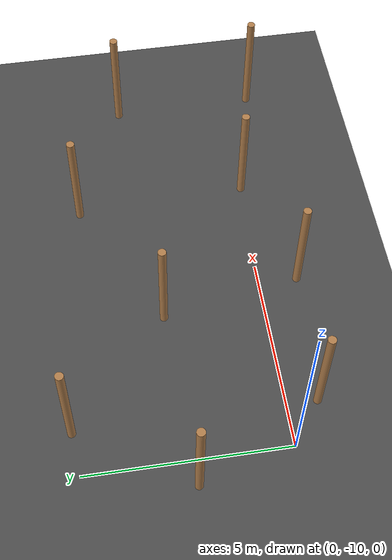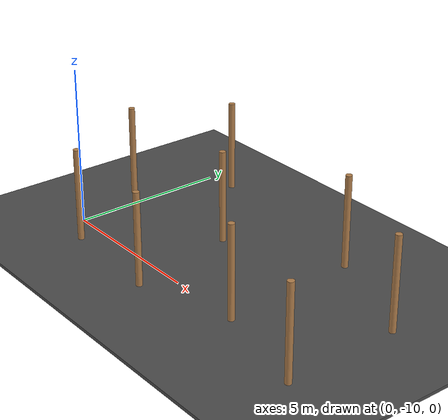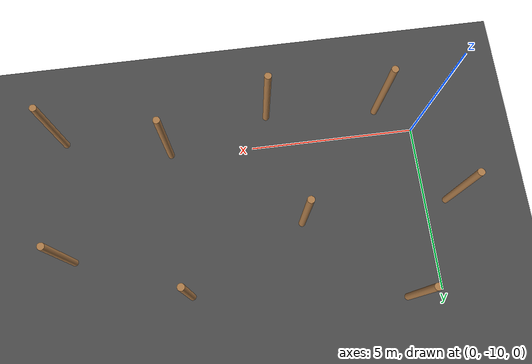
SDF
<sdf version="1.6">
 <world name="default">
  <include><uri>model://ground_plane</uri></include>
  <model name="asphalt_plane">
   <static>1</static>
   <link name="link">
    <collision name="collision"><geometry><box><size>42.4866 44.6464 0.1</size></box></geometry></collision>
    <visual name="visual">
     <cast_shadows>0</cast_shadows>
     <geometry><box><size>42.4866 44.6464 0.1</size></box></geometry>
     <material>
      <script>
       <uri>model://asphalt_plane/materials/scripts</uri>
       <uri>model://asphalt_plane/materials/textures</uri>
       <name>vrc/asphalt</name>
      </script>
     </material>
    </visual>
   </link>
  </model>
  <model name="wooden_cylinder1_clone_12">
   <pose>1.05943 -4.89483 8e-06 0 -0 0</pose>
   <link name="wooden_cylinder::link_0">
    <pose>0 0 1.5 0 -0 0</pose>
    <inertial>
     <mass>1</mass>
     <inertia><ixx>0.145833</ixx><ixy>0</ixy><ixz>0</ixz><iyy>0.145833</iyy><iyz>0</iyz><izz>0.125</izz></inertia>
    </inertial>
    <visual name="visual">
     <geometry><cylinder><radius>0.1</radius><length>3</length></cylinder></geometry>
     <material>
      <lighting>1</lighting>
      <script><uri>file://media/materials/scripts/gazebo.material</uri><name>Gazebo/Wood</name></script>
      <ambient>0.3 0.3 0.3 1</ambient>
      <diffuse>0.7 0.7 0.7 1</diffuse>
      <specular>0.01 0.01 0.01 1</specular>
      <emissive>0 0 0 1</emissive>
      <shader type="vertex"><normal_map>__default__</normal_map></shader>
     </material>
    </visual>
    <collision name="collision">
     <geometry><cylinder><radius>0.1</radius><length>3</length></cylinder></geometry>
     <surface>
      <friction>
       <ode><mu>1</mu><mu2>1</mu2><fdir1>0 0 0</fdir1><slip1>0</slip1><slip2>0</slip2></ode>
       <torsional>
        <coefficient>1</coefficient>
        <patch_radius>0</patch_radius>
        <surface_radius>0</surface_radius>
        <use_patch_radius>1</use_patch_radius>
        <ode><slip>0</slip></ode>
       </torsional>
      </friction>
      <bounce><restitution_coefficient>0</restitution_coefficient><threshold>1e+06</threshold></bounce>
      <contact>
       <collide_without_contact>0</collide_without_contact>
       <collide_without_contact_bitmask>1</collide_without_contact_bitmask>
       <collide_bitmask>1</collide_bitmask>
       <ode>
        <soft_cfm>0</soft_cfm>
        <soft_erp>0.2</soft_erp>
        <kp>1e+13</kp>
        <kd>1</kd>
        <max_vel>0.01</max_vel>
        <min_depth>0</min_depth>
       </ode>
       <bullet>
        <split_impulse>1</split_impulse>
        <split_impulse_penetration_threshold>-0.01</split_impulse_penetration_threshold>
        <soft_cfm>0</soft_cfm>
        <soft_erp>0.2</soft_erp>
        <kp>1e+13</kp>
        <kd>1</kd>
       </bullet>
      </contact>
     </surface>
    </collision>
   </link>
   <static>1</static>
  </model>
  <model name="wooden_cylinder1_clone_14">
   <pose>-0.619086 -7.63483 -3.8e-05 0 -0 0</pose>
   <link name="wooden_cylinder::link_0">
    <pose>0 0 1.5 0 -0 0</pose>
    <inertial>
     <mass>1</mass>
     <inertia><ixx>0.145833</ixx><ixy>0</ixy><ixz>0</ixz><iyy>0.145833</iyy><iyz>0</iyz><izz>0.125</izz></inertia>
    </inertial>
    <visual name="visual">
     <geometry><cylinder><radius>0.1</radius><length>3</length></cylinder></geometry>
     <material>
      <lighting>1</lighting>
      <script><uri>file://media/materials/scripts/gazebo.material</uri><name>Gazebo/Wood</name></script>
      <ambient>0.3 0.3 0.3 1</ambient>
      <diffuse>0.7 0.7 0.7 1</diffuse>
      <specular>0.01 0.01 0.01 1</specular>
      <emissive>0 0 0 1</emissive>
      <shader type="vertex"><normal_map>__default__</normal_map></shader>
     </material>
    </visual>
    <collision name="collision">
     <geometry><cylinder><radius>0.1</radius><length>3</length></cylinder></geometry>
     <surface>
      <friction>
       <ode><mu>1</mu><mu2>1</mu2><fdir1>0 0 0</fdir1><slip1>0</slip1><slip2>0</slip2></ode>
       <torsional>
        <coefficient>1</coefficient>
        <patch_radius>0</patch_radius>
        <surface_radius>0</surface_radius>
        <use_patch_radius>1</use_patch_radius>
        <ode><slip>0</slip></ode>
       </torsional>
      </friction>
      <bounce><restitution_coefficient>0</restitution_coefficient><threshold>1e+06</threshold></bounce>
      <contact>
       <collide_without_contact>0</collide_without_contact>
       <collide_without_contact_bitmask>1</collide_without_contact_bitmask>
       <collide_bitmask>1</collide_bitmask>
       <ode>
        <soft_cfm>0</soft_cfm>
        <soft_erp>0.2</soft_erp>
        <kp>1e+13</kp>
        <kd>1</kd>
        <max_vel>0.01</max_vel>
        <min_depth>0</min_depth>
       </ode>
       <bullet>
        <split_impulse>1</split_impulse>
        <split_impulse_penetration_threshold>-0.01</split_impulse_penetration_threshold>
        <soft_cfm>0</soft_cfm>
        <soft_erp>0.2</soft_erp>
        <kp>1e+13</kp>
        <kd>1</kd>
       </bullet>
      </contact>
     </surface>
    </collision>
   </link>
   <static>1</static>
  </model>
  <model name="wooden_cylinder1_clone_18">
   <pose>1.05229 -10.7459 3e-05 0 -0 0</pose>
   <link name="wooden_cylinder::link_0">
    <pose>0 0 1.5 0 -0 0</pose>
    <inertial>
     <mass>1</mass>
     <inertia><ixx>0.145833</ixx><ixy>0</ixy><ixz>0</ixz><iyy>0.145833</iyy><iyz>0</iyz><izz>0.125</izz></inertia>
    </inertial>
    <visual name="visual">
     <geometry><cylinder><radius>0.1</radius><length>3</length></cylinder></geometry>
     <material>
      <lighting>1</lighting>
      <script><uri>file://media/materials/scripts/gazebo.material</uri><name>Gazebo/Wood</name></script>
      <ambient>0.3 0.3 0.3 1</ambient>
      <diffuse>0.7 0.7 0.7 1</diffuse>
      <specular>0.01 0.01 0.01 1</specular>
      <emissive>0 0 0 1</emissive>
      <shader type="vertex"><normal_map>__default__</normal_map></shader>
     </material>
    </visual>
    <collision name="collision">
     <geometry><cylinder><radius>0.1</radius><length>3</length></cylinder></geometry>
     <surface>
      <friction>
       <ode><mu>1</mu><mu2>1</mu2><fdir1>0 0 0</fdir1><slip1>0</slip1><slip2>0</slip2></ode>
       <torsional>
        <coefficient>1</coefficient>
        <patch_radius>0</patch_radius>
        <surface_radius>0</surface_radius>
        <use_patch_radius>1</use_patch_radius>
        <ode><slip>0</slip></ode>
       </torsional>
      </friction>
      <bounce><restitution_coefficient>0</restitution_coefficient><threshold>1e+06</threshold></bounce>
      <contact>
       <collide_without_contact>0</collide_without_contact>
       <collide_without_contact_bitmask>1</collide_without_contact_bitmask>
       <collide_bitmask>1</collide_bitmask>
       <ode>
        <soft_cfm>0</soft_cfm>
        <soft_erp>0.2</soft_erp>
        <kp>1e+13</kp>
        <kd>1</kd>
        <max_vel>0.01</max_vel>
        <min_depth>0</min_depth>
       </ode>
       <bullet>
        <split_impulse>1</split_impulse>
        <split_impulse_penetration_threshold>-0.01</split_impulse_penetration_threshold>
        <soft_cfm>0</soft_cfm>
        <soft_erp>0.2</soft_erp>
        <kp>1e+13</kp>
        <kd>1</kd>
       </bullet>
      </contact>
     </surface>
    </collision>
   </link>
   <static>1</static>
  </model>
  <model name="wooden_cylinder1_clone_19">
   <pose>7.54901 -10.0816 0.000231 0 -0 0</pose>
   <link name="wooden_cylinder::link_0">
    <pose>0 0 1.5 0 -0 0</pose>
    <inertial>
     <mass>1</mass>
     <inertia><ixx>0.145833</ixx><ixy>0</ixy><ixz>0</ixz><iyy>0.145833</iyy><iyz>0</iyz><izz>0.125</izz></inertia>
    </inertial>
    <visual name="visual">
     <geometry><cylinder><radius>0.1</radius><length>3</length></cylinder></geometry>
     <material>
      <lighting>1</lighting>
      <script><uri>file://media/materials/scripts/gazebo.material</uri><name>Gazebo/Wood</name></script>
      <ambient>0.3 0.3 0.3 1</ambient>
      <diffuse>0.7 0.7 0.7 1</diffuse>
      <specular>0.01 0.01 0.01 1</specular>
      <emissive>0 0 0 1</emissive>
      <shader type="vertex"><normal_map>__default__</normal_map></shader>
     </material>
    </visual>
    <collision name="collision">
     <geometry><cylinder><radius>0.1</radius><length>3</length></cylinder></geometry>
     <surface>
      <friction>
       <ode><mu>1</mu><mu2>1</mu2><fdir1>0 0 0</fdir1><slip1>0</slip1><slip2>0</slip2></ode>
       <torsional>
        <coefficient>1</coefficient>
        <patch_radius>0</patch_radius>
        <surface_radius>0</surface_radius>
        <use_patch_radius>1</use_patch_radius>
        <ode><slip>0</slip></ode>
       </torsional>
      </friction>
      <bounce><restitution_coefficient>0</restitution_coefficient><threshold>1e+06</threshold></bounce>
      <contact>
       <collide_without_contact>0</collide_without_contact>
       <collide_without_contact_bitmask>1</collide_without_contact_bitmask>
       <collide_bitmask>1</collide_bitmask>
       <ode>
        <soft_cfm>0</soft_cfm>
        <soft_erp>0.2</soft_erp>
        <kp>1e+13</kp>
        <kd>1</kd>
        <max_vel>0.01</max_vel>
        <min_depth>0</min_depth>
       </ode>
       <bullet>
        <split_impulse>1</split_impulse>
        <split_impulse_penetration_threshold>-0.01</split_impulse_penetration_threshold>
        <soft_cfm>0</soft_cfm>
        <soft_erp>0.2</soft_erp>
        <kp>1e+13</kp>
        <kd>1</kd>
       </bullet>
      </contact>
     </surface>
    </collision>
   </link>
   <static>1</static>
  </model>
  <model name="wooden_cylinder1_clone_20">
   <pose>3.82649 -7.44946 -9.6e-05 0 -0 0</pose>
   <link name="wooden_cylinder::link_0">
    <pose>0 0 1.5 0 -0 0</pose>
    <inertial>
     <mass>1</mass>
     <inertia><ixx>0.145833</ixx><ixy>0</ixy><ixz>0</ixz><iyy>0.145833</iyy><iyz>0</iyz><izz>0.125</izz></inertia>
    </inertial>
    <visual name="visual">
     <geometry><cylinder><radius>0.1</radius><length>3</length></cylinder></geometry>
     <material>
      <lighting>1</lighting>
      <script><uri>file://media/materials/scripts/gazebo.material</uri><name>Gazebo/Wood</name></script>
      <ambient>0.3 0.3 0.3 1</ambient>
      <diffuse>0.7 0.7 0.7 1</diffuse>
      <specular>0.01 0.01 0.01 1</specular>
      <emissive>0 0 0 1</emissive>
      <shader type="vertex"><normal_map>__default__</normal_map></shader>
     </material>
    </visual>
    <collision name="collision">
     <geometry><cylinder><radius>0.1</radius><length>3</length></cylinder></geometry>
     <surface>
      <friction>
       <ode><mu>1</mu><mu2>1</mu2><fdir1>0 0 0</fdir1><slip1>0</slip1><slip2>0</slip2></ode>
       <torsional>
        <coefficient>1</coefficient>
        <patch_radius>0</patch_radius>
        <surface_radius>0</surface_radius>
        <use_patch_radius>1</use_patch_radius>
        <ode><slip>0</slip></ode>
       </torsional>
      </friction>
      <bounce><restitution_coefficient>0</restitution_coefficient><threshold>1e+06</threshold></bounce>
      <contact>
       <collide_without_contact>0</collide_without_contact>
       <collide_without_contact_bitmask>1</collide_without_contact_bitmask>
       <collide_bitmask>1</collide_bitmask>
       <ode>
        <soft_cfm>0</soft_cfm>
        <soft_erp>0.2</soft_erp>
        <kp>1e+13</kp>
        <kd>1</kd>
        <max_vel>0.01</max_vel>
        <min_depth>0</min_depth>
       </ode>
       <bullet>
        <split_impulse>1</split_impulse>
        <split_impulse_penetration_threshold>-0.01</split_impulse_penetration_threshold>
        <soft_cfm>0</soft_cfm>
        <soft_erp>0.2</soft_erp>
        <kp>1e+13</kp>
        <kd>1</kd>
       </bullet>
      </contact>
     </surface>
    </collision>
   </link>
   <static>1</static>
  </model>
  <model name="wooden_cylinder1_clone_21">
   <pose>4.4732 -10.9726 0.000101 0 -0 0</pose>
   <link name="wooden_cylinder::link_0">
    <pose>0 0 1.5 0 -0 0</pose>
    <inertial>
     <mass>1</mass>
     <inertia><ixx>0.145833</ixx><ixy>0</ixy><ixz>0</ixz><iyy>0.145833</iyy><iyz>0</iyz><izz>0.125</izz></inertia>
    </inertial>
    <visual name="visual">
     <geometry><cylinder><radius>0.1</radius><length>3</length></cylinder></geometry>
     <material>
      <lighting>1</lighting>
      <script><uri>file://media/materials/scripts/gazebo.material</uri><name>Gazebo/Wood</name></script>
      <ambient>0.3 0.3 0.3 1</ambient>
      <diffuse>0.7 0.7 0.7 1</diffuse>
      <specular>0.01 0.01 0.01 1</specular>
      <emissive>0 0 0 1</emissive>
      <shader type="vertex"><normal_map>__default__</normal_map></shader>
     </material>
    </visual>
    <collision name="collision">
     <geometry><cylinder><radius>0.1</radius><length>3</length></cylinder></geometry>
     <surface>
      <friction>
       <ode><mu>1</mu><mu2>1</mu2><fdir1>0 0 0</fdir1><slip1>0</slip1><slip2>0</slip2></ode>
       <torsional>
        <coefficient>1</coefficient>
        <patch_radius>0</patch_radius>
        <surface_radius>0</surface_radius>
        <use_patch_radius>1</use_patch_radius>
        <ode><slip>0</slip></ode>
       </torsional>
      </friction>
      <bounce><restitution_coefficient>0</restitution_coefficient><threshold>1e+06</threshold></bounce>
      <contact>
       <collide_without_contact>0</collide_without_contact>
       <collide_without_contact_bitmask>1</collide_without_contact_bitmask>
       <collide_bitmask>1</collide_bitmask>
       <ode>
        <soft_cfm>0</soft_cfm>
        <soft_erp>0.2</soft_erp>
        <kp>1e+13</kp>
        <kd>1</kd>
        <max_vel>0.01</max_vel>
        <min_depth>0</min_depth>
       </ode>
       <bullet>
        <split_impulse>1</split_impulse>
        <split_impulse_penetration_threshold>-0.01</split_impulse_penetration_threshold>
        <soft_cfm>0</soft_cfm>
        <soft_erp>0.2</soft_erp>
        <kp>1e+13</kp>
        <kd>1</kd>
       </bullet>
      </contact>
     </surface>
    </collision>
   </link>
   <static>1</static>
  </model>
  <model name="wooden_cylinder1_clone_25">
   <pose>7.31258 -5.66031 -0.000174 0 -0 0</pose>
   <link name="wooden_cylinder::link_0">
    <pose>0 0 1.5 0 -0 0</pose>
    <inertial>
     <mass>1</mass>
     <inertia><ixx>0.145833</ixx><ixy>0</ixy><ixz>0</ixz><iyy>0.145833</iyy><iyz>0</iyz><izz>0.125</izz></inertia>
    </inertial>
    <visual name="visual">
     <geometry><cylinder><radius>0.1</radius><length>3</length></cylinder></geometry>
     <material>
      <lighting>1</lighting>
      <script><uri>file://media/materials/scripts/gazebo.material</uri><name>Gazebo/Wood</name></script>
      <ambient>0.3 0.3 0.3 1</ambient>
      <diffuse>0.7 0.7 0.7 1</diffuse>
      <specular>0.01 0.01 0.01 1</specular>
      <emissive>0 0 0 1</emissive>
      <shader type="vertex"><normal_map>__default__</normal_map></shader>
     </material>
    </visual>
    <collision name="collision">
     <geometry><cylinder><radius>0.1</radius><length>3</length></cylinder></geometry>
     <surface>
      <friction>
       <ode><mu>1</mu><mu2>1</mu2><fdir1>0 0 0</fdir1><slip1>0</slip1><slip2>0</slip2></ode>
       <torsional>
        <coefficient>1</coefficient>
        <patch_radius>0</patch_radius>
        <surface_radius>0</surface_radius>
        <use_patch_radius>1</use_patch_radius>
        <ode><slip>0</slip></ode>
       </torsional>
      </friction>
      <bounce><restitution_coefficient>0</restitution_coefficient><threshold>1e+06</threshold></bounce>
      <contact>
       <collide_without_contact>0</collide_without_contact>
       <collide_without_contact_bitmask>1</collide_without_contact_bitmask>
       <collide_bitmask>1</collide_bitmask>
       <ode>
        <soft_cfm>0</soft_cfm>
        <soft_erp>0.2</soft_erp>
        <kp>1e+13</kp>
        <kd>1</kd>
        <max_vel>0.01</max_vel>
        <min_depth>0</min_depth>
       </ode>
       <bullet>
        <split_impulse>1</split_impulse>
        <split_impulse_penetration_threshold>-0.01</split_impulse_penetration_threshold>
        <soft_cfm>0</soft_cfm>
        <soft_erp>0.2</soft_erp>
        <kp>1e+13</kp>
        <kd>1</kd>
       </bullet>
      </contact>
     </surface>
    </collision>
   </link>
   <static>1</static>
  </model>
  <model name="wooden_cylinder1_clone_28">
   <pose>10.6822 -7.09279 -0.000131 0 -0 0</pose>
   <link name="wooden_cylinder::link_0">
    <pose>0 0 1.5 0 -0 0</pose>
    <inertial>
     <mass>1</mass>
     <inertia><ixx>0.145833</ixx><ixy>0</ixy><ixz>0</ixz><iyy>0.145833</iyy><iyz>0</iyz><izz>0.125</izz></inertia>
    </inertial>
    <visual name="visual">
     <geometry><cylinder><radius>0.1</radius><length>3</length></cylinder></geometry>
     <material>
      <lighting>1</lighting>
      <script><uri>file://media/materials/scripts/gazebo.material</uri><name>Gazebo/Wood</name></script>
      <ambient>0.3 0.3 0.3 1</ambient>
      <diffuse>0.7 0.7 0.7 1</diffuse>
      <specular>0.01 0.01 0.01 1</specular>
      <emissive>0 0 0 1</emissive>
      <shader type="vertex"><normal_map>__default__</normal_map></shader>
     </material>
    </visual>
    <collision name="collision">
     <geometry><cylinder><radius>0.1</radius><length>3</length></cylinder></geometry>
     <surface>
      <friction>
       <ode><mu>1</mu><mu2>1</mu2><fdir1>0 0 0</fdir1><slip1>0</slip1><slip2>0</slip2></ode>
       <torsional>
        <coefficient>1</coefficient>
        <patch_radius>0</patch_radius>
        <surface_radius>0</surface_radius>
        <use_patch_radius>1</use_patch_radius>
        <ode><slip>0</slip></ode>
       </torsional>
      </friction>
      <bounce><restitution_coefficient>0</restitution_coefficient><threshold>1e+06</threshold></bounce>
      <contact>
       <collide_without_contact>0</collide_without_contact>
       <collide_without_contact_bitmask>1</collide_without_contact_bitmask>
       <collide_bitmask>1</collide_bitmask>
       <ode>
        <soft_cfm>0</soft_cfm>
        <soft_erp>0.2</soft_erp>
        <kp>1e+13</kp>
        <kd>1</kd>
        <max_vel>0.01</max_vel>
        <min_depth>0</min_depth>
       </ode>
       <bullet>
        <split_impulse>1</split_impulse>
        <split_impulse_penetration_threshold>-0.01</split_impulse_penetration_threshold>
        <soft_cfm>0</soft_cfm>
        <soft_erp>0.2</soft_erp>
        <kp>1e+13</kp>
        <kd>1</kd>
       </bullet>
      </contact>
     </surface>
    </collision>
   </link>
   <static>1</static>
  </model>
  <model name="wooden_cylinder1_clone_47">
   <pose>10.7582 -10.8233 4.6e-05 0 -0 0</pose>
   <link name="wooden_cylinder::link_0">
    <pose>0 0 1.5 0 -0 0</pose>
    <inertial>
     <mass>1</mass>
     <inertia><ixx>0.145833</ixx><ixy>0</ixy><ixz>0</ixz><iyy>0.145833</iyy><iyz>0</iyz><izz>0.125</izz></inertia>
    </inertial>
    <visual name="visual">
     <geometry><cylinder><radius>0.1</radius><length>3</length></cylinder></geometry>
     <material>
      <lighting>1</lighting>
      <script><uri>file://media/materials/scripts/gazebo.material</uri><name>Gazebo/Wood</name></script>
      <ambient>0.3 0.3 0.3 1</ambient>
      <diffuse>0.7 0.7 0.7 1</diffuse>
      <specular>0.01 0.01 0.01 1</specular>
      <emissive>0 0 0 1</emissive>
      <shader type="vertex"><normal_map>__default__</normal_map></shader>
     </material>
    </visual>
    <collision name="collision">
     <geometry><cylinder><radius>0.1</radius><length>3</length></cylinder></geometry>
     <surface>
      <friction>
       <ode><mu>1</mu><mu2>1</mu2><fdir1>0 0 0</fdir1><slip1>0</slip1><slip2>0</slip2></ode>
       <torsional>
        <coefficient>1</coefficient>
        <patch_radius>0</patch_radius>
        <surface_radius>0</surface_radius>
        <use_patch_radius>1</use_patch_radius>
        <ode><slip>0</slip></ode>
       </torsional>
      </friction>
      <bounce><restitution_coefficient>0</restitution_coefficient><threshold>1e+06</threshold></bounce>
      <contact>
       <collide_without_contact>0</collide_without_contact>
       <collide_without_contact_bitmask>1</collide_without_contact_bitmask>
       <collide_bitmask>1</collide_bitmask>
       <ode>
        <soft_cfm>0</soft_cfm>
        <soft_erp>0.2</soft_erp>
        <kp>1e+13</kp>
        <kd>1</kd>
        <max_vel>0.01</max_vel>
        <min_depth>0</min_depth>
       </ode>
       <bullet>
        <split_impulse>1</split_impulse>
        <split_impulse_penetration_threshold>-0.01</split_impulse_penetration_threshold>
        <soft_cfm>0</soft_cfm>
        <soft_erp>0.2</soft_erp>
        <kp>1e+13</kp>
        <kd>1</kd>
       </bullet>
      </contact>
     </surface>
    </collision>
   </link>
   <static>1</static>
  </model>
 </world>
</sdf>
